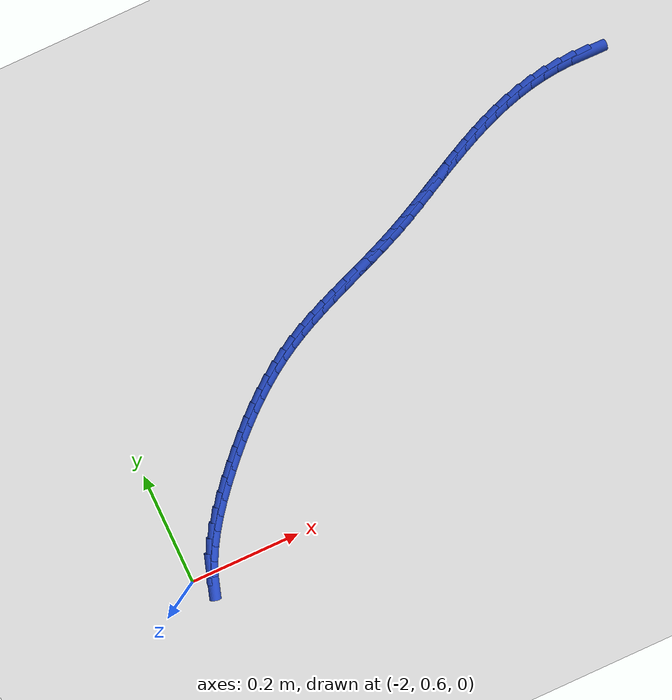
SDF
<sdf version="1.6">
 <world name="default">
  <model name="ground_plane">
   <static>1</static>
   <link name="link">
    <collision name="collision">
     <geometry><plane><normal>0 0 1</normal><size>100 100</size></plane></geometry>
     <surface><friction><ode><mu>100</mu><mu2>50</mu2></ode></friction></surface>
    </collision>
    <visual name="visual">
     <cast_shadows>0</cast_shadows>
     <geometry><plane><normal>0 0 1</normal><size>100 100</size></plane></geometry>
     <material>
      <script><uri>file://media/materials/scripts/gazebo.material</uri><name>Gazebo/WhiteGlow</name></script>
     </material>
    </visual>
   </link>
  </model>
  <model name="line">
   <link name="link_63">
    <pose>-1.0141940509524145 1.1430343483343475 0.01 0 1.57 -0.016726029411488975</pose>
    <collision name="collision">
     <geometry><cylinder><radius>0.01</radius><length>0.08</length></cylinder></geometry>
    </collision>
    <visual name="visual">
     <material>
      <script><name>Gazebo/Blue</name><uri>file://media/materials/scripts/gazebo.material</uri></script>
     </material>
     <geometry><cylinder><radius>0.01</radius><length>0.08</length></cylinder></geometry>
    </visual>
   </link>
   <link name="link_64">
    <pose>-1.041306412285241 1.1434878727808795 0.01 0 1.57 0.049724086244175666</pose>
    <collision name="collision">
     <geometry><cylinder><radius>0.01</radius><length>0.08</length></cylinder></geometry>
    </collision>
    <visual name="visual">
     <material>
      <script><name>Gazebo/Blue</name><uri>file://media/materials/scripts/gazebo.material</uri></script>
     </material>
     <geometry><cylinder><radius>0.01</radius><length>0.08</length></cylinder></geometry>
    </visual>
   </link>
   <link name="link_65">
    <pose>-1.0684789637384084 1.1421356278368688 0.01 0 1.57 0.11190775363540284</pose>
    <collision name="collision">
     <geometry><cylinder><radius>0.01</radius><length>0.08</length></cylinder></geometry>
    </collision>
    <visual name="visual">
     <material>
      <script><name>Gazebo/Blue</name><uri>file://media/materials/scripts/gazebo.material</uri></script>
     </material>
     <geometry><cylinder><radius>0.01</radius><length>0.08</length></cylinder></geometry>
    </visual>
   </link>
   <link name="link_66">
    <pose>-1.0954757529332397 1.139101802669841 0.01 0 1.57 0.1710121874426664</pose>
    <collision name="collision">
     <geometry><cylinder><radius>0.01</radius><length>0.08</length></cylinder></geometry>
    </collision>
    <visual name="visual">
     <material>
      <script><name>Gazebo/Blue</name><uri>file://media/materials/scripts/gazebo.material</uri></script>
     </material>
     <geometry><cylinder><radius>0.01</radius><length>0.08</length></cylinder></geometry>
    </visual>
   </link>
   <link name="link_67">
    <pose>-1.1220608274910564 1.1345105864473222 0.01 0 1.57 0.22773385216797168</pose>
    <collision name="collision">
     <geometry><cylinder><radius>0.01</radius><length>0.08</length></cylinder></geometry>
    </collision>
    <visual name="visual">
     <material>
      <script><name>Gazebo/Blue</name><uri>file://media/materials/scripts/gazebo.material</uri></script>
     </material>
     <geometry><cylinder><radius>0.01</radius><length>0.08</length></cylinder></geometry>
    </visual>
   </link>
   <link name="link_68">
    <pose>-1.1480378824588584 1.1284902937943988 0.01 0 1.57 0.2800721633641779</pose>
    <collision name="collision">
     <geometry><cylinder><radius>0.01</radius><length>0.08</length></cylinder></geometry>
    </collision>
    <visual name="visual">
     <material>
      <script><name>Gazebo/Blue</name><uri>file://media/materials/scripts/gazebo.material</uri></script>
     </material>
     <geometry><cylinder><radius>0.01</radius><length>0.08</length></cylinder></geometry>
    </visual>
   </link>
   <link name="link_69">
    <pose>-1.17341628815771 1.1211906405898404 0.01 0 1.57 0.3267092540994791</pose>
    <collision name="collision">
     <geometry><cylinder><radius>0.01</radius><length>0.08</length></cylinder></geometry>
    </collision>
    <visual name="visual">
     <material>
      <script><name>Gazebo/Blue</name><uri>file://media/materials/scripts/gazebo.material</uri></script>
     </material>
     <geometry><cylinder><radius>0.01</radius><length>0.08</length></cylinder></geometry>
    </visual>
   </link>
   <link name="link_70">
    <pose>-1.1982719043565853 1.1127682611791503 0.01 0 1.57 0.3671916291564925</pose>
    <collision name="collision">
     <geometry><cylinder><radius>0.01</radius><length>0.08</length></cylinder></geometry>
    </collision>
    <visual name="visual">
     <material>
      <script><name>Gazebo/Blue</name><uri>file://media/materials/scripts/gazebo.material</uri></script>
     </material>
     <geometry><cylinder><radius>0.01</radius><length>0.08</length></cylinder></geometry>
    </visual>
   </link>
   <link name="link_71">
    <pose>-1.2226806242172712 1.103379793382475 0.01 0 1.57 0.40123229508254626</pose>
    <collision name="collision">
     <geometry><cylinder><radius>0.01</radius><length>0.08</length></cylinder></geometry>
    </collision>
    <visual name="visual">
     <material>
      <script><name>Gazebo/Blue</name><uri>file://media/materials/scripts/gazebo.material</uri></script>
     </material>
     <geometry><cylinder><radius>0.01</radius><length>0.08</length></cylinder></geometry>
    </visual>
   </link>
   <link name="link_72">
    <pose>-1.2467183409015585 1.093181875019961 0.01 0 1.57 0.4286723957342897</pose>
    <collision name="collision">
     <geometry><cylinder><radius>0.01</radius><length>0.08</length></cylinder></geometry>
    </collision>
    <visual name="visual">
     <material>
      <script><name>Gazebo/Blue</name><uri>file://media/materials/scripts/gazebo.material</uri></script>
     </material>
     <geometry><cylinder><radius>0.01</radius><length>0.08</length></cylinder></geometry>
    </visual>
   </link>
   <link name="link_73">
    <pose>-1.2704609475712354 1.082331143911755 0.01 0 1.57 0.4494419301533974</pose>
    <collision name="collision">
     <geometry><cylinder><radius>0.01</radius><length>0.08</length></cylinder></geometry>
    </collision>
    <visual name="visual">
     <material>
      <script><name>Gazebo/Blue</name><uri>file://media/materials/scripts/gazebo.material</uri></script>
     </material>
     <geometry><cylinder><radius>0.01</radius><length>0.08</length></cylinder></geometry>
    </visual>
   </link>
   <link name="link_74">
    <pose>-1.293984337388091 1.070984237878003 0.01 0 1.57 0.46352476437839174</pose>
    <collision name="collision">
     <geometry><cylinder><radius>0.01</radius><length>0.08</length></cylinder></geometry>
    </collision>
    <visual name="visual">
     <material>
      <script><name>Gazebo/Blue</name><uri>file://media/materials/scripts/gazebo.material</uri></script>
     </material>
     <geometry><cylinder><radius>0.01</radius><length>0.08</length></cylinder></geometry>
    </visual>
   </link>
   <link name="link_75">
    <pose>-1.317364403513915 1.0592977947388518 0.01 0 1.57 0.4709310440404485</pose>
    <collision name="collision">
     <geometry><cylinder><radius>0.01</radius><length>0.08</length></cylinder></geometry>
    </collision>
    <visual name="visual">
     <material>
      <script><name>Gazebo/Blue</name><uri>file://media/materials/scripts/gazebo.material</uri></script>
     </material>
     <geometry><cylinder><radius>0.01</radius><length>0.08</length></cylinder></geometry>
    </visual>
   </link>
   <link name="link_76">
    <pose>-1.3406770391104952 1.0474284523144484 0.01 0 1.57 0.4716783078131573</pose>
    <collision name="collision">
     <geometry><cylinder><radius>0.01</radius><length>0.08</length></cylinder></geometry>
    </collision>
    <visual name="visual">
     <material>
      <script><name>Gazebo/Blue</name><uri>file://media/materials/scripts/gazebo.material</uri></script>
     </material>
     <geometry><cylinder><radius>0.01</radius><length>0.08</length></cylinder></geometry>
    </visual>
   </link>
   <link name="link_77">
    <pose>-1.3639981373396206 1.0355328484249382 0.01 0 1.57 0.46578159845726524</pose>
    <collision name="collision">
     <geometry><cylinder><radius>0.01</radius><length>0.08</length></cylinder></geometry>
    </collision>
    <visual name="visual">
     <material>
      <script><name>Gazebo/Blue</name><uri>file://media/materials/scripts/gazebo.material</uri></script>
     </material>
     <geometry><cylinder><radius>0.01</radius><length>0.08</length></cylinder></geometry>
    </visual>
   </link>
   <link name="link_78">
    <pose>-1.3874035913630813 1.0237676208904685 0.01 0 1.57 0.4532524840691968</pose>
    <collision name="collision">
     <geometry><cylinder><radius>0.01</radius><length>0.08</length></cylinder></geometry>
    </collision>
    <visual name="visual">
     <material>
      <script><name>Gazebo/Blue</name><uri>file://media/materials/scripts/gazebo.material</uri></script>
     </material>
     <geometry><cylinder><radius>0.01</radius><length>0.08</length></cylinder></geometry>
    </visual>
   </link>
   <link name="link_79">
    <pose>-1.4109692943426655 1.0122894075311857 0.01 0 1.57 0.43410685240384517</pose>
    <collision name="collision">
     <geometry><cylinder><radius>0.01</radius><length>0.08</length></cylinder></geometry>
    </collision>
    <visual name="visual">
     <material>
      <script><name>Gazebo/Blue</name><uri>file://media/materials/scripts/gazebo.material</uri></script>
     </material>
     <geometry><cylinder><radius>0.01</radius><length>0.08</length></cylinder></geometry>
    </visual>
   </link>
   <link name="link_80">
    <pose>-1.4347711394401617 1.001254846167236 0.01 0 1.57 0.4094853175289217</pose>
    <collision name="collision">
     <geometry><cylinder><radius>0.01</radius><length>0.08</length></cylinder></geometry>
    </collision>
    <visual name="visual">
     <material>
      <script><name>Gazebo/Blue</name><uri>file://media/materials/scripts/gazebo.material</uri></script>
     </material>
     <geometry><cylinder><radius>0.01</radius><length>0.08</length></cylinder></geometry>
    </visual>
   </link>
   <link name="link_81">
    <pose>-1.4588714181545772 0.9907948568595815 0.01 0 1.57 0.3881277248245793</pose>
    <collision name="collision">
     <geometry><cylinder><radius>0.01</radius><length>0.08</length></cylinder></geometry>
    </collision>
    <visual name="visual">
     <material>
      <script><name>Gazebo/Blue</name><uri>file://media/materials/scripts/gazebo.material</uri></script>
     </material>
     <geometry><cylinder><radius>0.01</radius><length>0.08</length></cylinder></geometry>
    </visual>
   </link>
   <link name="link_82">
    <pose>-1.4832250908971338 0.9808374201379821 0.01 0 1.57 0.37411390209983686</pose>
    <collision name="collision">
     <geometry><cylinder><radius>0.01</radius><length>0.08</length></cylinder></geometry>
    </collision>
    <visual name="visual">
     <material>
      <script><name>Gazebo/Blue</name><uri>file://media/materials/scripts/gazebo.material</uri></script>
     </material>
     <geometry><cylinder><radius>0.01</radius><length>0.08</length></cylinder></geometry>
    </visual>
   </link>
   <link name="link_83">
    <pose>-1.5077362132667067 0.9712142667040542 0.01 0 1.57 0.3674158204303403</pose>
    <collision name="collision">
     <geometry><cylinder><radius>0.01</radius><length>0.08</length></cylinder></geometry>
    </collision>
    <visual name="visual">
     <material>
      <script><name>Gazebo/Blue</name><uri>file://media/materials/scripts/gazebo.material</uri></script>
     </material>
     <geometry><cylinder><radius>0.01</radius><length>0.08</length></cylinder></geometry>
    </visual>
   </link>
   <link name="link_84">
    <pose>-1.5323085342831964 0.961756547585861 0.01 0 1.57 0.368015777200567</pose>
    <collision name="collision">
     <geometry><cylinder><radius>0.01</radius><length>0.08</length></cylinder></geometry>
    </collision>
    <visual name="visual">
     <material>
      <script><name>Gazebo/Blue</name><uri>file://media/materials/scripts/gazebo.material</uri></script>
     </material>
     <geometry><cylinder><radius>0.01</radius><length>0.08</length></cylinder></geometry>
    </visual>
   </link>
   <link name="link_85">
    <pose>-1.5568458029665053 0.9522954138114669 0.01 0 1.57 0.3759419420897162</pose>
    <collision name="collision">
     <geometry><cylinder><radius>0.01</radius><length>0.08</length></cylinder></geometry>
    </collision>
    <visual name="visual">
     <material>
      <script><name>Gazebo/Blue</name><uri>file://media/materials/scripts/gazebo.material</uri></script>
     </material>
     <geometry><cylinder><radius>0.01</radius><length>0.08</length></cylinder></geometry>
    </visual>
   </link>
   <link name="link_86">
    <pose>-1.5812517683365364 0.9426620164089354 0.01 0 1.57 0.3912679347216637</pose>
    <collision name="collision">
     <geometry><cylinder><radius>0.01</radius><length>0.08</length></cylinder></geometry>
    </collision>
    <visual name="visual">
     <material>
      <script><name>Gazebo/Blue</name><uri>file://media/materials/scripts/gazebo.material</uri></script>
     </material>
     <geometry><cylinder><radius>0.01</radius><length>0.08</length></cylinder></geometry>
    </visual>
   </link>
   <link name="link_87">
    <pose>-1.605430179413191 0.9326875064063305 0.01 0 1.57 0.4141009777824503</pose>
    <collision name="collision">
     <geometry><cylinder><radius>0.01</radius><length>0.08</length></cylinder></geometry>
    </collision>
    <visual name="visual">
     <material>
      <script><name>Gazebo/Blue</name><uri>file://media/materials/scripts/gazebo.material</uri></script>
     </material>
     <geometry><cylinder><radius>0.01</radius><length>0.08</length></cylinder></geometry>
    </visual>
   </link>
   <link name="link_88">
    <pose>-1.6292847852163717 0.9222030348317161 0.01 0 1.57 0.4445573926550346</pose>
    <collision name="collision">
     <geometry><cylinder><radius>0.01</radius><length>0.08</length></cylinder></geometry>
    </collision>
    <visual name="visual">
     <material>
      <script><name>Gazebo/Blue</name><uri>file://media/materials/scripts/gazebo.material</uri></script>
     </material>
     <geometry><cylinder><radius>0.01</radius><length>0.08</length></cylinder></geometry>
    </visual>
   </link>
   <link name="link_89">
    <pose>-1.6527193347659803 0.9110397527131564 0.01 0 1.57 0.48272377451482734</pose>
    <collision name="collision">
     <geometry><cylinder><radius>0.01</radius><length>0.08</length></cylinder></geometry>
    </collision>
    <visual name="visual">
     <material>
      <script><name>Gazebo/Blue</name><uri>file://media/materials/scripts/gazebo.material</uri></script>
     </material>
     <geometry><cylinder><radius>0.01</radius><length>0.08</length></cylinder></geometry>
    </visual>
   </link>
   <link name="link_90">
    <pose>-1.6756375770819187 0.8990288110787146 0.01 0 1.57 0.5280918512427852</pose>
    <collision name="collision">
     <geometry><cylinder><radius>0.01</radius><length>0.08</length></cylinder></geometry>
    </collision>
    <visual name="visual">
     <material>
      <script><name>Gazebo/Blue</name><uri>file://media/materials/scripts/gazebo.material</uri></script>
     </material>
     <geometry><cylinder><radius>0.01</radius><length>0.08</length></cylinder></geometry>
    </visual>
   </link>
   <link name="link_91">
    <pose>-1.697949815188602 0.8860128184203224 0.01 0 1.57 0.574618252742985</pose>
    <collision name="collision">
     <geometry><cylinder><radius>0.01</radius><length>0.08</length></cylinder></geometry>
    </collision>
    <visual name="visual">
     <material>
      <script><name>Gazebo/Blue</name><uri>file://media/materials/scripts/gazebo.material</uri></script>
     </material>
     <geometry><cylinder><radius>0.01</radius><length>0.08</length></cylinder></geometry>
    </visual>
   </link>
   <link name="link_92">
    <pose>-1.7196421767662629 0.8719669370377021 0.01 0 1.57 0.6183240090594733</pose>
    <collision name="collision">
     <geometry><cylinder><radius>0.01</radius><length>0.08</length></cylinder></geometry>
    </collision>
    <visual name="visual">
     <material>
      <script><name>Gazebo/Blue</name><uri>file://media/materials/scripts/gazebo.material</uri></script>
     </material>
     <geometry><cylinder><radius>0.01</radius><length>0.08</length></cylinder></geometry>
    </visual>
   </link>
   <link name="link_93">
    <pose>-1.7407495355626192 0.8569515452700013 0.01 0 1.57 0.6590255677977057</pose>
    <collision name="collision">
     <geometry><cylinder><radius>0.01</radius><length>0.08</length></cylinder></geometry>
    </collision>
    <visual name="visual">
     <material>
      <script><name>Gazebo/Blue</name><uri>file://media/materials/scripts/gazebo.material</uri></script>
     </material>
     <geometry><cylinder><radius>0.01</radius><length>0.08</length></cylinder></geometry>
    </visual>
   </link>
   <link name="link_94">
    <pose>-1.7613075700197185 0.8410284281926872 0.01 0 1.57 0.696660756601796</pose>
    <collision name="collision">
     <geometry><cylinder><radius>0.01</radius><length>0.08</length></cylinder></geometry>
    </collision>
    <visual name="visual">
     <material>
      <script><name>Gazebo/Blue</name><uri>file://media/materials/scripts/gazebo.material</uri></script>
     </material>
     <geometry><cylinder><radius>0.01</radius><length>0.08</length></cylinder></geometry>
    </visual>
   </link>
   <link name="link_95">
    <pose>-1.7813519585796045 0.8242593708812279 0.01 0 1.57 0.7312155662054235</pose>
    <collision name="collision">
     <geometry><cylinder><radius>0.01</radius><length>0.08</length></cylinder></geometry>
    </collision>
    <visual name="visual">
     <material>
      <script><name>Gazebo/Blue</name><uri>file://media/materials/scripts/gazebo.material</uri></script>
     </material>
     <geometry><cylinder><radius>0.01</radius><length>0.08</length></cylinder></geometry>
    </visual>
   </link>
   <link name="link_96">
    <pose>-1.8009183796843242 0.8067061584110912 0.01 0 1.57 0.7627133919465016</pose>
    <collision name="collision">
     <geometry><cylinder><radius>0.01</radius><length>0.08</length></cylinder></geometry>
    </collision>
    <visual name="visual">
     <material>
      <script><name>Gazebo/Blue</name><uri>file://media/materials/scripts/gazebo.material</uri></script>
     </material>
     <geometry><cylinder><radius>0.01</radius><length>0.08</length></cylinder></geometry>
    </visual>
   </link>
   <link name="link_97">
    <pose>-1.8200425117759231 0.7884305758577443 0.01 0 1.57 0.7912048609209839</pose>
    <collision name="collision">
     <geometry><cylinder><radius>0.01</radius><length>0.08</length></cylinder></geometry>
    </collision>
    <visual name="visual">
     <material>
      <script><name>Gazebo/Blue</name><uri>file://media/materials/scripts/gazebo.material</uri></script>
     </material>
     <geometry><cylinder><radius>0.01</radius><length>0.08</length></cylinder></geometry>
    </visual>
   </link>
   <link name="link_98">
    <pose>-1.8387600332964478 0.7694944082966555 0.01 0 1.57 0.8167587670533101</pose>
    <collision name="collision">
     <geometry><cylinder><radius>0.01</radius><length>0.08</length></cylinder></geometry>
    </collision>
    <visual name="visual">
     <material>
      <script><name>Gazebo/Blue</name><uri>file://media/materials/scripts/gazebo.material</uri></script>
     </material>
     <geometry><cylinder><radius>0.01</radius><length>0.08</length></cylinder></geometry>
    </visual>
   </link>
   <link name="link_99">
    <pose>-1.8571066226879445 0.7499594408032922 0.01 0 1.57 0.8397530521597409</pose>
    <collision name="collision">
     <geometry><cylinder><radius>0.01</radius><length>0.08</length></cylinder></geometry>
    </collision>
    <visual name="visual">
     <material>
      <script><name>Gazebo/Blue</name><uri>file://media/materials/scripts/gazebo.material</uri></script>
     </material>
     <geometry><cylinder><radius>0.01</radius><length>0.08</length></cylinder></geometry>
    </visual>
   </link>
   <link name="link_100">
    <pose>-1.8751092867958352 0.7298850626348532 0.01 0 1.57 0.866442690345697</pose>
    <collision name="collision">
     <geometry><cylinder><radius>0.01</radius><length>0.08</length></cylinder></geometry>
    </collision>
    <visual name="visual">
     <material>
      <script><name>Gazebo/Blue</name><uri>file://media/materials/scripts/gazebo.material</uri></script>
     </material>
     <geometry><cylinder><radius>0.01</radius><length>0.08</length></cylinder></geometry>
    </visual>
   </link>
   <link name="link_101">
    <pose>-1.8926172855628727 0.7092815545284709 0.01 0 1.57 0.902964804260369</pose>
    <collision name="collision">
     <geometry><cylinder><radius>0.01</radius><length>0.08</length></cylinder></geometry>
    </collision>
    <visual name="visual">
     <material>
      <script><name>Gazebo/Blue</name><uri>file://media/materials/scripts/gazebo.material</uri></script>
     </material>
     <geometry><cylinder><radius>0.01</radius><length>0.08</length></cylinder></geometry>
    </visual>
   </link>
   <link name="link_102">
    <pose>-1.9093134118430726 0.6881132051266491 0.01 0 1.57 0.9502381080243385</pose>
    <collision name="collision">
     <geometry><cylinder><radius>0.01</radius><length>0.08</length></cylinder></geometry>
    </collision>
    <visual name="visual">
     <material>
      <script><name>Gazebo/Blue</name><uri>file://media/materials/scripts/gazebo.material</uri></script>
     </material>
     <geometry><cylinder><radius>0.01</radius><length>0.08</length></cylinder></geometry>
    </visual>
   </link>
   <link name="link_103">
    <pose>-1.924874045896958 0.6663425313787075 0.01 0 1.57 1.0091553997033413</pose>
    <collision name="collision">
     <geometry><cylinder><radius>0.01</radius><length>0.08</length></cylinder></geometry>
    </collision>
    <visual name="visual">
     <material>
      <script><name>Gazebo/Blue</name><uri>file://media/materials/scripts/gazebo.material</uri></script>
     </material>
     <geometry><cylinder><radius>0.01</radius><length>0.08</length></cylinder></geometry>
    </visual>
   </link>
   <link name="link_104">
    <pose>-1.9389755679850529 0.6439320502339649 0.01 0 1.57 1.080659884036091</pose>
    <collision name="collision">
     <geometry><cylinder><radius>0.01</radius><length>0.08</length></cylinder></geometry>
    </collision>
    <visual name="visual">
     <material>
      <script><name>Gazebo/Blue</name><uri>file://media/materials/scripts/gazebo.material</uri></script>
     </material>
     <geometry><cylinder><radius>0.01</radius><length>0.08</length></cylinder></geometry>
    </visual>
   </link>
   <link name="link_105">
    <pose>-1.9512943583678828 0.6208442786417411 0.01 0 1.57 1.1655018270788264</pose>
    <collision name="collision">
     <geometry><cylinder><radius>0.01</radius><length>0.08</length></cylinder></geometry>
    </collision>
    <visual name="visual">
     <material>
      <script><name>Gazebo/Blue</name><uri>file://media/materials/scripts/gazebo.material</uri></script>
     </material>
     <geometry><cylinder><radius>0.01</radius><length>0.08</length></cylinder></geometry>
    </visual>
   </link>
   <link name="link_106">
    <pose>-1.9615067973059714 0.5970417335513548 0.01 0 1.57 1.2638690541641726</pose>
    <collision name="collision">
     <geometry><cylinder><radius>0.01</radius><length>0.08</length></cylinder></geometry>
    </collision>
    <visual name="visual">
     <material>
      <script><name>Gazebo/Blue</name><uri>file://media/materials/scripts/gazebo.material</uri></script>
     </material>
     <geometry><cylinder><radius>0.01</radius><length>0.08</length></cylinder></geometry>
    </visual>
   </link>
  </model>
 </world>
</sdf>
